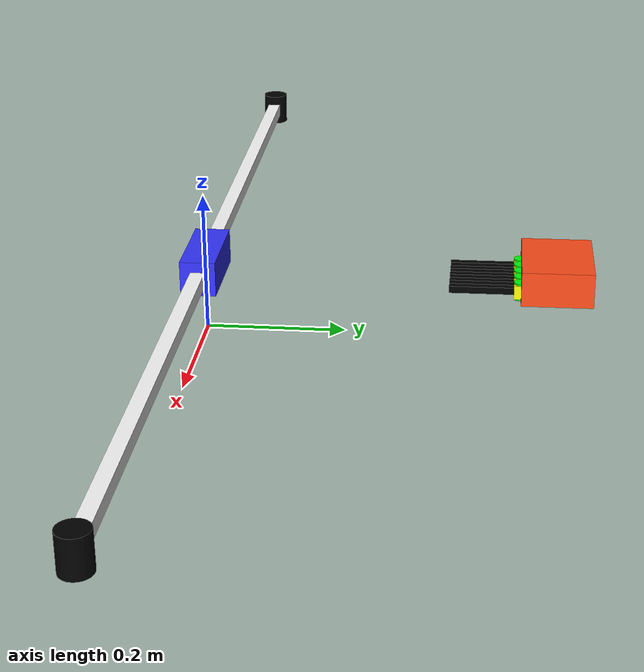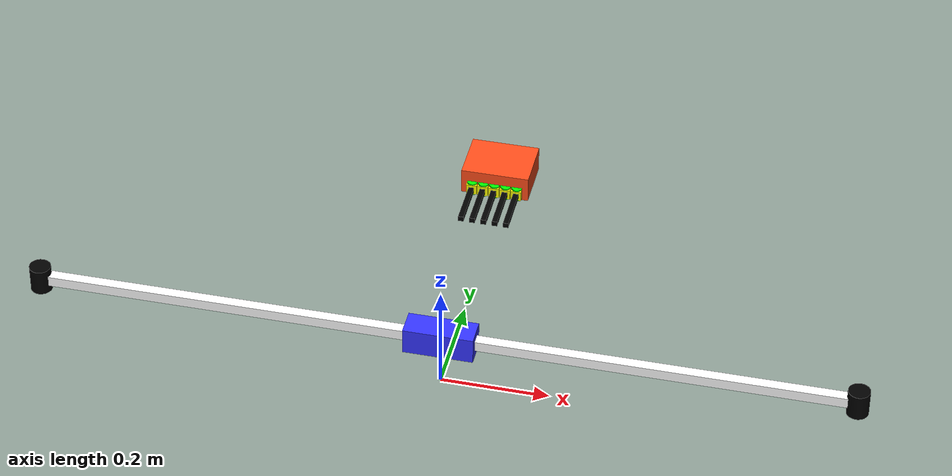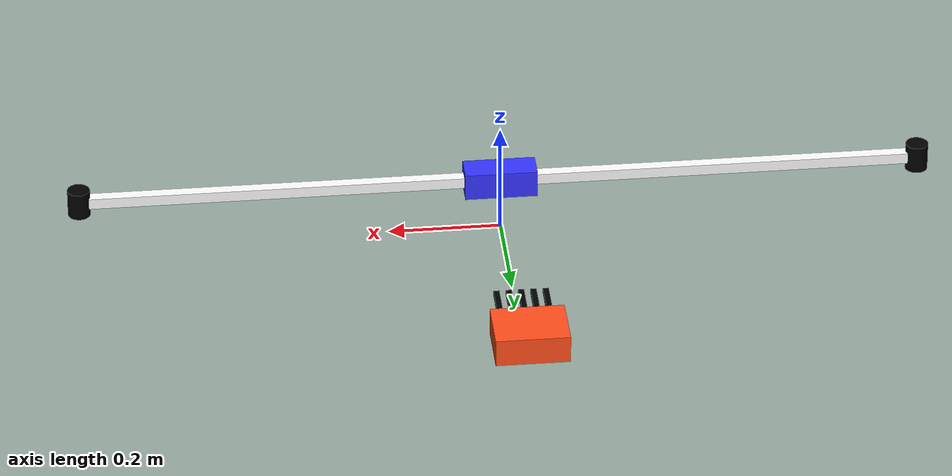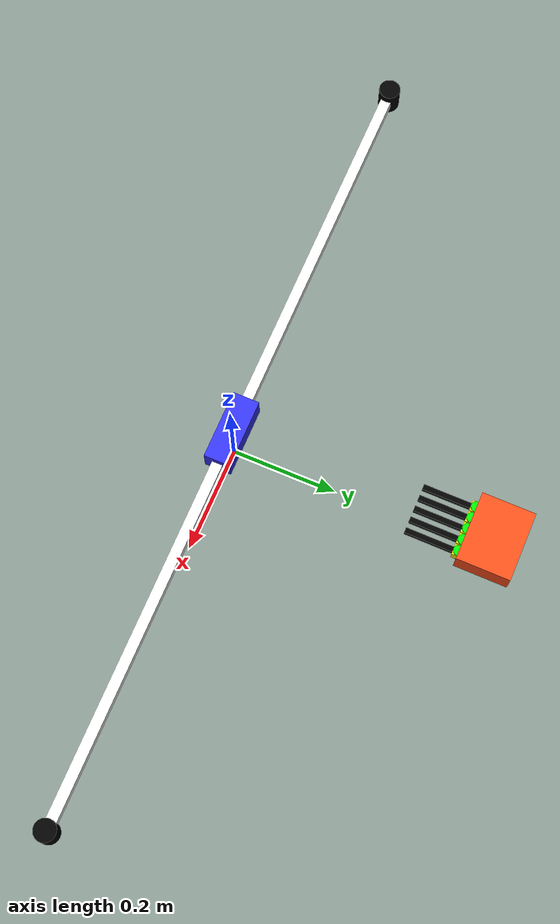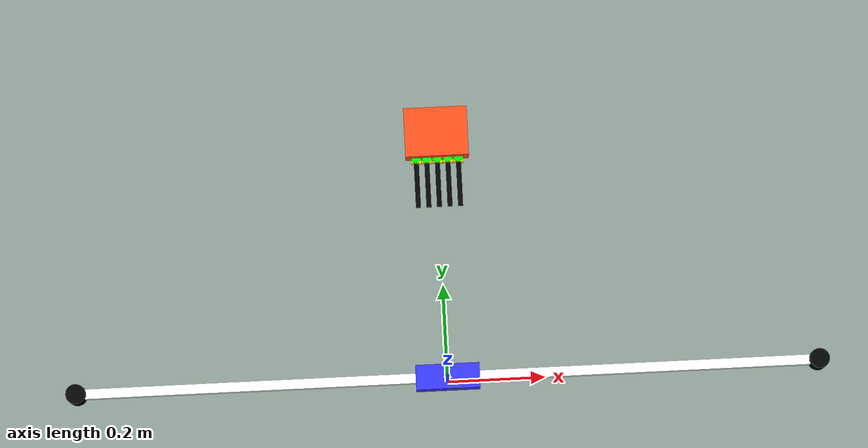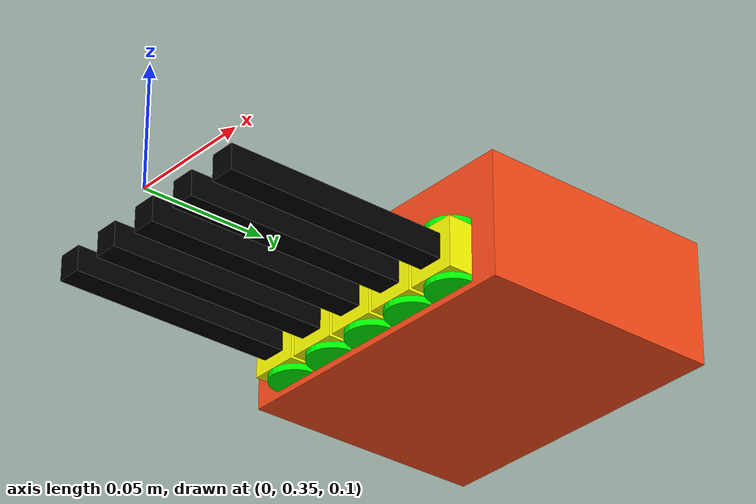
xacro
<?xml version="1.0"?>
<robot xmlns:xacro="http://www.ros.org/wiki/xacro">
  <xacro:include filename="$(find description)/description/common.xacro" />

  <!-- Robot Properties -->
  <link name="base_link">
    <inertial>
      <mass value="1.0" />
      <origin xyz="0 0 0" />
      <inertia ixx="0.1" ixy="0.0" ixz="0.0" iyy="0.1" iyz="0.0" izz="0.1" />
    </inertial>
  </link>

  <!-- Aluminum Rail -->
  <link name="aluminum_rail">
    <visual>
      <geometry>
        <box size="1.5 0.02 0.02" />
      </geometry>
      <material name="white" />
    </visual>

    <gazebo>
      <material>Gazebo/White</material>
    </gazebo>
  </link>

  <joint name="rail_to_base" type="fixed">
    <parent link="base_link" />
    <child link="aluminum_rail" />
    <origin xyz="0 0 0.1" />
    <gazebo>
      <disableFixedJointLumping>false</disableFixedJointLumping>
    </gazebo>
  </joint>

  <!-- Stepper Motors -->
  <xacro:stepper name="left_hand_stepper" parent_link="aluminum_rail" origin_xyz="0.75 0 0" />
  <xacro:stepper name="right_hand_stepper" parent_link="aluminum_rail" origin_xyz="-0.75 0 0" />

  <!-- Carriages -->
  <xacro:carriage name="left_carriage" parent_link="aluminum_rail" axis_x="-1"
    mimic="left_hand_stepper_joint" />
  <xacro:carriage name="right_carriage" parent_link="aluminum_rail" axis_x="1"
    mimic="right_hand_stepper_joint" />

  <!-- Hands -->
  <xacro:hand name="left_hand" parent_link="left_carriage" />
  <xacro:hand name="right_hand" parent_link="right_carriage" />

  <!-- Solenoids and Servos attached to each finger -->
  <xacro:solenoid name="left_hand_thumb_solenoid" parent_link="left_hand_thumb_servo" />
  <xacro:servo name="left_hand_thumb_servo" parent_link="left_hand" x_origin="${thumb_offset}" />

  <xacro:solenoid name="left_hand_index_finger_solenoid" parent_link="left_hand_index_finger_servo" />
  <xacro:servo name="left_hand_index_finger_servo" parent_link="left_hand"
    x_origin="${index_offset}" />

  <xacro:solenoid name="left_hand_middle_finger_solenoid"
    parent_link="left_hand_middle_finger_servo" />
  <xacro:servo name="left_hand_middle_finger_servo" parent_link="left_hand"
    x_origin="${middle_offset}" />

  <xacro:solenoid name="left_hand_ring_finger_solenoid" parent_link="left_hand_ring_finger_servo" />
  <xacro:servo name="left_hand_ring_finger_servo" parent_link="left_hand" x_origin="${ring_offset}" />

  <xacro:solenoid name="left_hand_pinky_solenoid" parent_link="left_hand_pinky_servo" />
  <xacro:servo name="left_hand_pinky_servo" parent_link="left_hand" x_origin="${pinky_offset}" />

  <xacro:solenoid name="right_hand_thumb_solenoid" parent_link="right_hand_thumb_servo" />
  <xacro:servo name="right_hand_thumb_servo" parent_link="right_hand" x_origin="${-thumb_offset}" />

  <xacro:solenoid name="right_hand_index_finger_solenoid"
    parent_link="right_hand_index_finger_servo" />
  <xacro:servo name="right_hand_index_finger_servo" parent_link="right_hand"
    x_origin="${-index_offset}" />

  <xacro:solenoid name="right_hand_middle_finger_solenoid"
    parent_link="right_hand_middle_finger_servo" />
  <xacro:servo name="right_hand_middle_finger_servo" parent_link="right_hand"
    x_origin="${-middle_offset}" />

  <xacro:solenoid name="right_hand_ring_finger_solenoid" parent_link="right_hand_ring_finger_servo" />
  <xacro:servo name="right_hand_ring_finger_servo" parent_link="right_hand"
    x_origin="${-ring_offset}" />

  <xacro:solenoid name="right_hand_pinky_solenoid" parent_link="right_hand_pinky_servo" />
  <xacro:servo name="right_hand_pinky_servo" parent_link="right_hand" x_origin="${-pinky_offset}" />

  <!-- Left Hand Fingers -->
  <xacro:finger name="left_hand_thumb" parent_link="left_hand_thumb_solenoid" />
  <xacro:finger name="left_hand_index_finger" parent_link="left_hand_index_finger_solenoid" />
  <xacro:finger name="left_hand_middle_finger" parent_link="left_hand_middle_finger_solenoid" />
  <xacro:finger name="left_hand_ring_finger" parent_link="left_hand_ring_finger_solenoid" />
  <xacro:finger name="left_hand_pinky" parent_link="left_hand_pinky_solenoid" />

  <!-- Right Hand Fingers -->
  <xacro:finger name="right_hand_thumb" parent_link="right_hand_thumb_solenoid" />
  <xacro:finger name="right_hand_index_finger" parent_link="right_hand_index_finger_solenoid" />
  <xacro:finger name="right_hand_middle_finger" parent_link="right_hand_middle_finger_solenoid" />
  <xacro:finger name="right_hand_ring_finger" parent_link="right_hand_ring_finger_solenoid" />
  <xacro:finger name="right_hand_pinky" parent_link="right_hand_pinky_solenoid" />
</robot>

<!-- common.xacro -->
<robot xmlns:xacro="http://www.ros.org/wiki/xacro">
    <!-- Colours -->
    <material name="white">
        <color rgba="1 1 1 1" />
    </material>

    <material name="orange">
        <color rgba="1 0.3 0.1 1" />
    </material>

    <material name="blue">
        <color rgba="0.2 0.2 1 1" />
    </material>

    <material name="black">
        <color rgba="0 0 0 1" />
    </material>

    <material name="yellow">
        <color rgba="1.0 1.0 0.0 1.0" />
    </material>

    <material name="green">
        <color rgba="0.0 1.0 0.0 1.0" />
    </material>

    <!-- Properties -->
    <!-- Piano Properties -->
    <xacro:property name="piano_length" value="1.2192" />

    <!-- Stepper Motor Properties -->
    <xacro:property name="stepper_min_angle"
        value="${ (carriage_min_position - carriage_stepper_offset) / carriage_stepper_multiplier}" />
    <xacro:property name="stepper_max_angle"
        value="${ (carriage_max_position - carriage_stepper_offset) / carriage_stepper_multiplier}" />
    <xacro:property name="stepper_pulley_radius" value="0.019" />

    <!-- Carriage Properties -->
    <xacro:property name="carriage_min_position" value="${-(piano_length - hand_length) / 2}" />
    <xacro:property name="carriage_max_position"
        value="${((piano_length - hand_length) / 2) - hand_length}" />
    <xacro:property name="carriage_stepper_offset"
        value="${carriage_min_position}" />
    <xacro:property name="carriage_stepper_multiplier"
        value="${stepper_pulley_radius}" />

    <!-- Hand Properties -->
    <xacro:property name="hand_length" value="0.129" />
    <xacro:property name="hand_width" value="0.1" />
    <xacro:property name="hand_height" value="0.05" />

    <!-- Finger Properties -->
    <xacro:property name="finger_length" value="0.1" />
    <xacro:property name="finger_thickness" value="0.01" />
    <xacro:property name="finger_spacing" value="${hand_length/6}" />
    <xacro:property name="thumb_offset" value="${-hand_length/2 + finger_spacing}" />
    <xacro:property name="index_offset" value="${-hand_length/2 + 2*finger_spacing}" />
    <xacro:property name="middle_offset" value="0" />
    <xacro:property name="ring_offset" value="${hand_length/2 - 2*finger_spacing}" />
    <xacro:property name="pinky_offset" value="${hand_length/2 - finger_spacing}" />

    <!-- Servo Joint Properties -->
    <xacro:property name="servo_min" value="-0.2" />
    <xacro:property name="servo_max" value="0.2" />

    <!-- Solenoid Joint Properties -->
    <xacro:property name="solenoid_min" value="-0.2" />
    <xacro:property name="solenoid_max" value="0.2" />

    <!-- Macros -->
    <!-- Stepper Motor Macro -->
    <xacro:macro name="stepper" params="name parent_link origin_xyz">
        <link name="${name}">
            <visual>
                <geometry>
                    <cylinder radius="0.02" length="0.05" />
                </geometry>
                <material name="black" />
            </visual>
            <inertial>
                <mass value="0.1" />
                <origin xyz="0 0 0" />
                <inertia ixx="0.0001" ixy="0.0" ixz="0.0" iyy="0.0001" iyz="0.0" izz="0.0001" />
            </inertial>
            <gazebo>
                <material>Gazebo/Black</material>
            </gazebo>
        </link>
        <joint name="${name}_joint" type="revolute">
            <parent link="${parent_link}" />
            <child link="${name}" />
            <origin xyz="${origin_xyz}" rpy="0 0 0" />
            <axis xyz="0 0 1" />
            <limit lower="${stepper_min_angle}" upper="${stepper_max_angle}" effort="5"
                velocity="1.0" />
        </joint>
    </xacro:macro>

    <!-- Carriage Macro -->
    <xacro:macro name="carriage" params="name parent_link axis_x mimic">
        <link name="${name}">
            <visual>
                <geometry>
                    <box size="0.129 0.05 0.05" />
                </geometry>
                <material name="blue" />
            </visual>
            <collision>
                <geometry>
                    <box size="0.129 0.05 0.05" />
                </geometry>
            </collision>
            <inertial>
                <mass value="0.5" />
                <origin xyz="0 0 0" />
                <inertia ixx="0.001" ixy="0.0" ixz="0.0" iyy="0.001" iyz="0.0" izz="0.001" />
            </inertial>
            <gazebo>
                <material>Gazebo/Blue</material>
            </gazebo>
        </link>

        <joint name="${name}_joint" type="prismatic">
            <parent link="${parent_link}" />
            <child link="${name}" />
            <origin xyz="0 0 0" />
            <axis xyz="${axis_x} 0 0" />
            <limit lower="${carriage_min_position}" upper="${carriage_max_position}" effort="10"
                velocity="0.5" />
            <mimic joint="${mimic}" multiplier="${carriage_stepper_multiplier}"
                offset="${carriage_stepper_offset}" />
        </joint>
    </xacro:macro>

    <!-- Hand Macro -->
    <xacro:macro name="hand" params="name parent_link">
        <link name="${name}">
            <visual>
                <geometry>
                    <box size="${hand_length} ${hand_width} ${hand_height}" />
                </geometry>
                <material name="orange" />
            </visual>
            <collision>
                <geometry>
                    <box size="${hand_length} ${hand_width} ${hand_height}" />
                </geometry>
                <origin xyz="0 0.5 0" />
            </collision>
            <inertial>
                <mass value="0.2" />
                <origin xyz="0 0 0" />
                <inertia ixx="0.0005" ixy="0.0" ixz="0.0" iyy="0.0005" iyz="0.0" izz="0.0005" />
            </inertial>
            <gazebo>
                <material>Gazebo/Orange</material>
            </gazebo>
        </link>

        <joint name="${name}_joint" type="fixed">
            <parent link="${parent_link}" />
            <child link="${name}" />
            <origin xyz="0 0.5 0" />
        </joint>
    </xacro:macro>

    <!-- Solenoid Macro -->
    <xacro:macro name="solenoid" params="name parent_link">
        <link name="${name}">
            <visual>
                <geometry>
                    <cylinder radius="0.01" length="0.025" />
                </geometry>
                <material name="green" />
            </visual>
            <inertial>
                <mass value="0.05" />
                <origin xyz="0 0 0" />
                <inertia ixx="0.00005" ixy="0.0" ixz="0.0" iyy="0.00005" iyz="0.0" izz="0.00005" />
            </inertial>
            <gazebo>
                <material>Gazebo/Green</material>
            </gazebo>
        </link>
        <joint name="${name}_joint" type="revolute">
            <parent link="${parent_link}" />
            <child link="${name}" />
            <origin xyz="0 0 0" />
            <axis xyz="1 0 0" />
            <limit lower="${solenoid_min}" upper="${solenoid_max}" effort="1" velocity="1.0" />
        </joint>
    </xacro:macro>

    <!-- Servo Macro -->
    <xacro:macro name="servo" params="name parent_link x_origin">
        <link name="${name}">
            <visual>
                <geometry>
                    <box size="0.02 0.02 0.02" />
                </geometry>
                <material name="yellow" />
            </visual>
            <inertial>
                <mass value="0.05" />
                <origin xyz="0 0 0" />
                <inertia ixx="0.00002" ixy="0.0" ixz="0.0" iyy="0.00002" iyz="0.0" izz="0.00002" />
            </inertial>
            <gazebo>
                <material>Gazebo/Yellow</material>
            </gazebo>
        </link>
        <joint name="${name}_joint" type="revolute">
            <parent link="${parent_link}" />
            <child link="${name}" />
            <origin xyz="${x_origin} -${hand_width/2} -0.01" />
            <axis xyz="0 0 1" />
            <limit lower="${servo_min}" upper="${servo_max}" effort="1" velocity="1.0" />
        </joint>
    </xacro:macro>

    <!-- Finger Macro -->
    <xacro:macro name="finger" params="name parent_link">
        <link name="${name}">
            <visual>
                <geometry>
                    <box size="${finger_thickness} ${finger_length} ${finger_thickness}" />
                </geometry>
                <material name="black" />
            </visual>
            <collision>
                <geometry>
                    <box size="${finger_thickness} ${finger_length} ${finger_thickness}" />
                </geometry>
                <origin xyz="0 -0.05 0" />
            </collision>
            <inertial>
                <mass value="0.1" />
                <origin xyz="0 0 0" />
                <inertia ixx="0.0001" ixy="0.0" ixz="0.0" iyy="0.0001" iyz="0.0" izz="0.0001" />
            </inertial>
            <gazebo>
                <material>Gazebo/Black</material>
            </gazebo>
        </link>
        <joint name="${name}_joint" type="fixed">
            <parent link="${parent_link}" />
            <child link="${name}" />
            <origin xyz="0 -0.05 0" />
        </joint>
    </xacro:macro>
</robot>
